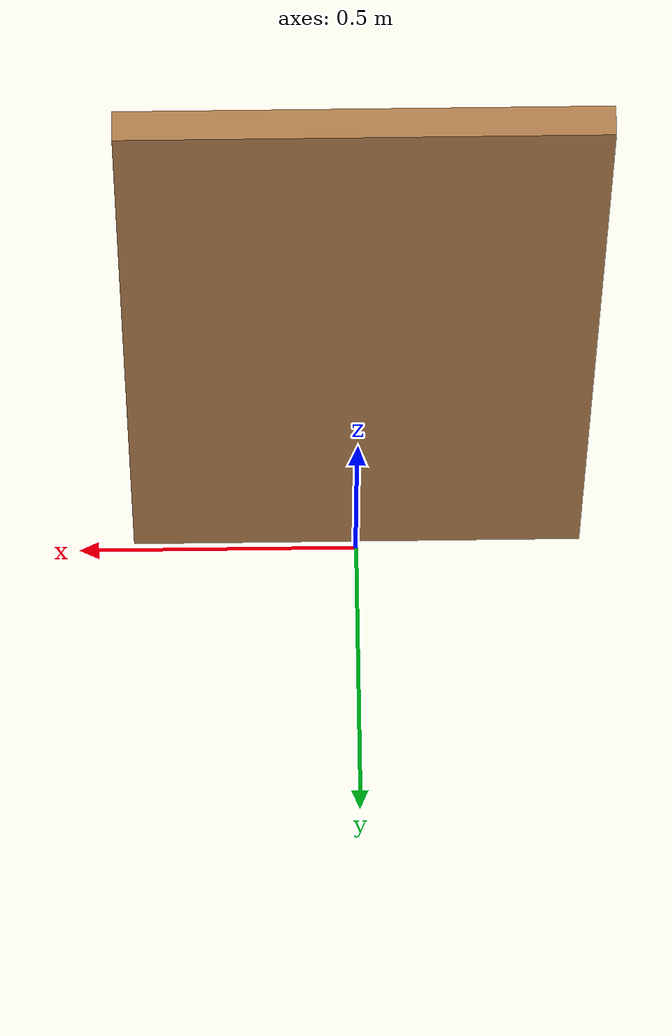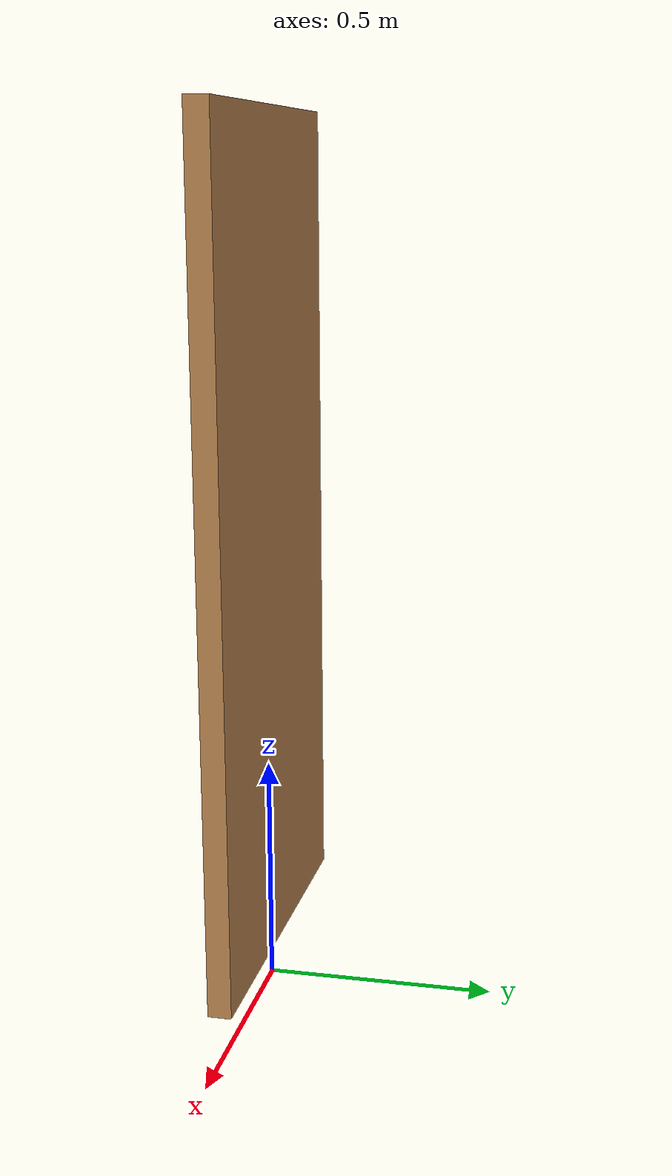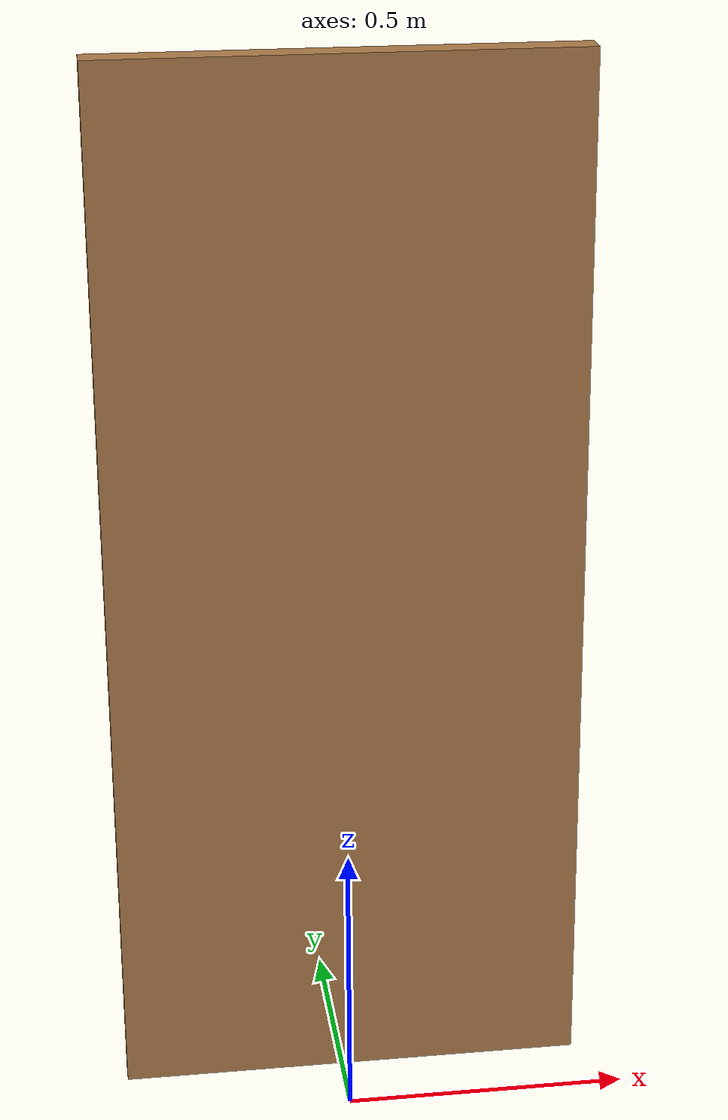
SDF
<?xml version="1.0" ?>
<sdf version="1.3">
    <model name="simpler_door_z_minus">
        <link name="door">
            <inertial>
                <pose>0 0 1.0 0 0 0</pose>
                <inertia>
                    <ixx>2.7</ixx>
                    <ixy>0</ixy>
                    <ixz>0</ixz>
                    <iyy>3.23</iyy>
                    <iyz>0</iyz>
                    <izz>0.53</izz>
                </inertia>
                <mass>10.0</mass>
            </inertial>
            <collision name="door_geom">
                <pose>0 0 1.0 0 0 0</pose>
                <geometry>
                    <box>
                        <size>0.8 0.05 1.8</size>
                    </box>
                </geometry>
            </collision>
            <visual name="door_geom_visual">
                <pose>0 0 1.0 0 0 0</pose>
                <geometry>
                    <box>
                        <size>0.8 0.05 1.8</size>
                    </box>
                </geometry>
                <material>
                    <script>
                        <uri>file://media/materials/scripts/gazebo.material</uri>
                        <name>Gazebo/Wood</name>
                    </script>
                </material>
            </visual>
        </link>

    <joint name="hinge" type="revolute">
      <parent>world</parent>
      <child>door</child>
      <pose>-0.4 0.025 0 0 0 0</pose>
      <axis>
        <dynamics>
            <damping>0.3</damping>
        </dynamics>
        <limit>
          <lower>0</lower>
          <upper>1.5707</upper>
        </limit>
        <xyz>0 0 1</xyz>
      </axis>
    </joint>

    </model>
</sdf>
